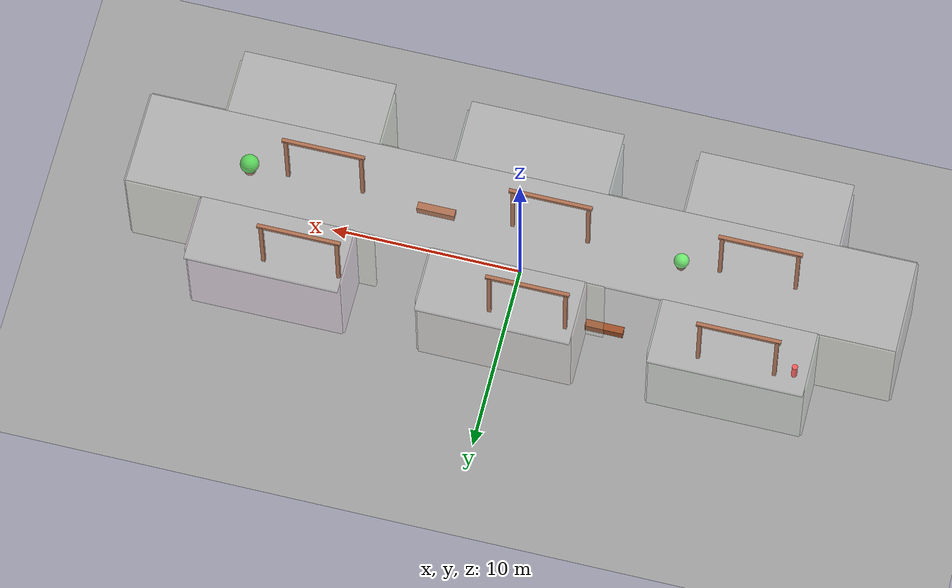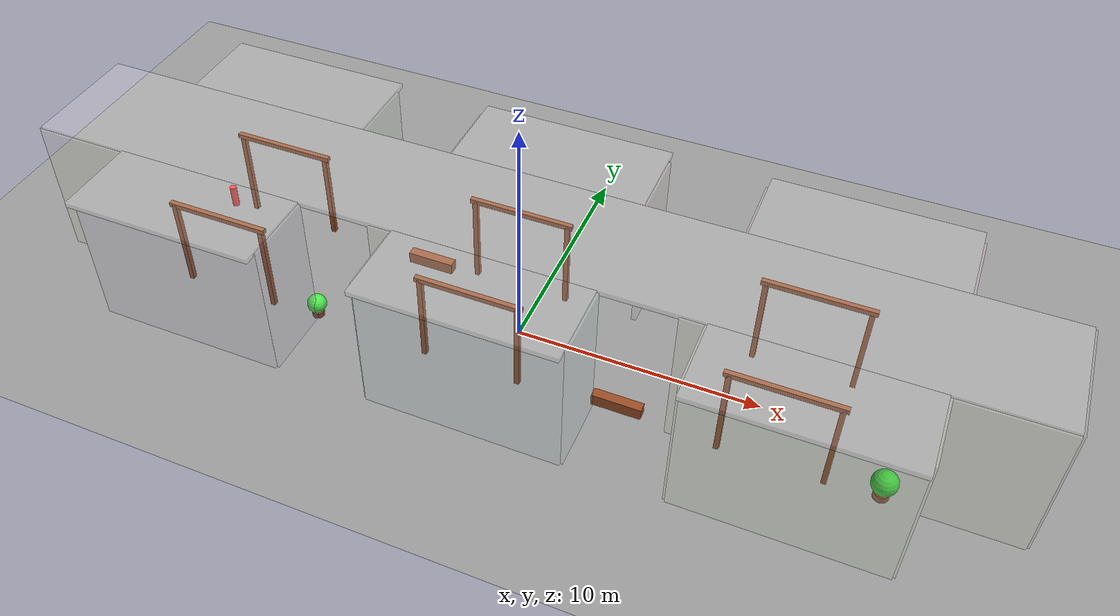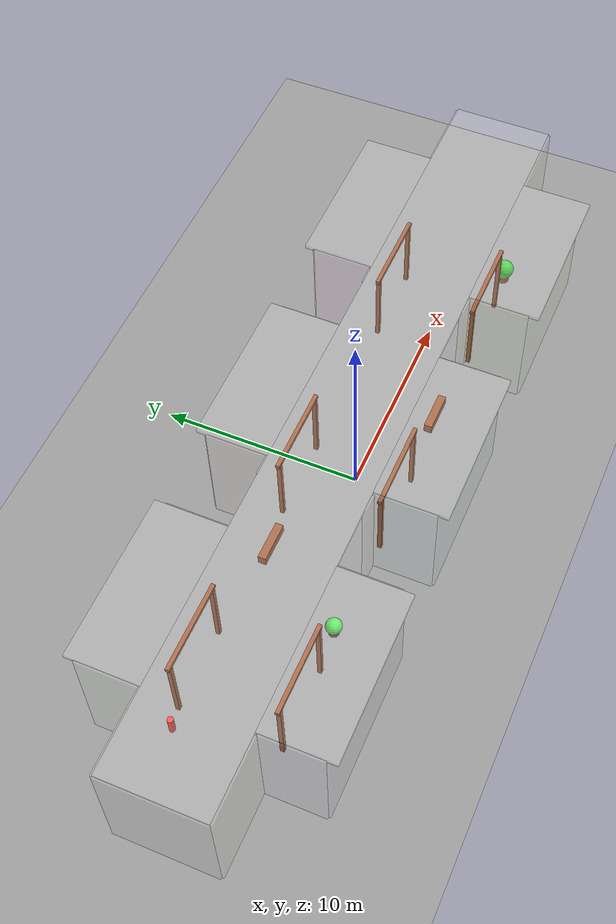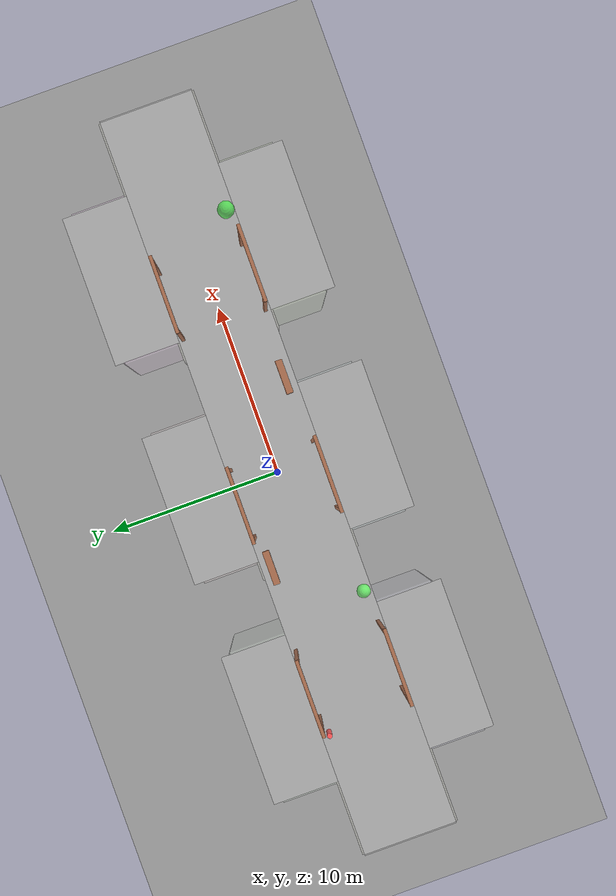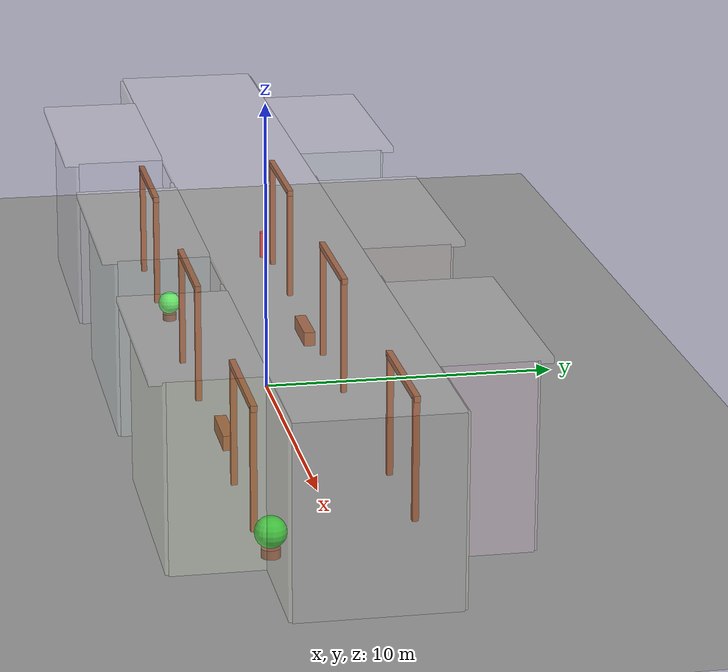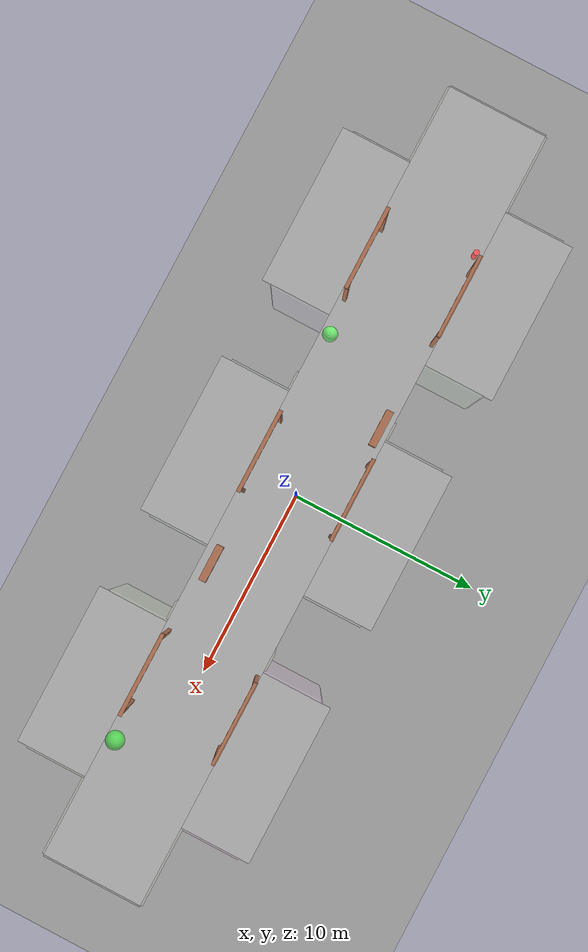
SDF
<?xml version="1.0" ?>
<sdf version="1.8">
  <world name="corridor_rooms">
    <physics name="1ms" type="ignored">
      <max_step_size>0.001</max_step_size>
      <real_time_factor>1.0</real_time_factor>
    </physics>

    <plugin
      filename="gz-sim-physics-system"
      name="gz::sim::systems::Physics">
    </plugin>
    <plugin
      filename="gz-sim-user-commands-system"
      name="gz::sim::systems::UserCommands">
    </plugin>
    <plugin
      filename="gz-sim-scene-broadcaster-system"
      name="gz::sim::systems::SceneBroadcaster">
    </plugin>

    <scene>
      <ambient>0.4 0.4 0.4</ambient>
      <background>0.7 0.7 0.7</background>
      <shadows>true</shadows>
    </scene>

    <!-- Lighting -->
    <light type="directional" name="sun">
      <cast_shadows>true</cast_shadows>
      <pose>0 0 10 0 0 0</pose>
      <diffuse>0.8 0.8 0.8 1</diffuse>
      <specular>0.2 0.2 0.2 1</specular>
      <attenuation>
        <range>1000</range>
        <constant>0.9</constant>
        <linear>0.01</linear>
        <quadratic>0.001</quadratic>
      </attenuation>
      <direction>-0.5 0.1 -0.9</direction>
    </light>

    <!-- Corridor ceiling lights -->
    <light type="point" name="corridor_light_1">
      <pose>-15 0 5.5 0 0 0</pose>
      <diffuse>1.0 1.0 0.9 1</diffuse>
      <specular>0.1 0.1 0.1 1</specular>
      <attenuation>
        <range>10</range>
        <constant>0.5</constant>
        <linear>0.01</linear>
        <quadratic>0.001</quadratic>
      </attenuation>
    </light>

    <light type="point" name="corridor_light_2">
      <pose>-7 0 5.5 0 0 0</pose>
      <diffuse>1.0 1.0 0.9 1</diffuse>
      <specular>0.1 0.1 0.1 1</specular>
      <attenuation>
        <range>10</range>
        <constant>0.5</constant>
        <linear>0.01</linear>
        <quadratic>0.001</quadratic>
      </attenuation>
    </light>

    <light type="point" name="corridor_light_3">
      <pose>0 0 5.5 0 0 0</pose>
      <diffuse>1.0 1.0 0.9 1</diffuse>
      <specular>0.1 0.1 0.1 1</specular>
      <attenuation>
        <range>10</range>
        <constant>0.5</constant>
        <linear>0.01</linear>
        <quadratic>0.001</quadratic>
      </attenuation>
    </light>

    <light type="point" name="corridor_light_4">
      <pose>7 0 5.5 0 0 0</pose>
      <diffuse>1.0 1.0 0.9 1</diffuse>
      <specular>0.1 0.1 0.1 1</specular>
      <attenuation>
        <range>10</range>
        <constant>0.5</constant>
        <linear>0.01</linear>
        <quadratic>0.001</quadratic>
      </attenuation>
    </light>

    <light type="point" name="corridor_light_5">
      <pose>15 0 5.5 0 0 0</pose>
      <diffuse>1.0 1.0 0.9 1</diffuse>
      <specular>0.1 0.1 0.1 1</specular>
      <attenuation>
        <range>10</range>
        <constant>0.5</constant>
        <linear>0.01</linear>
        <quadratic>0.001</quadratic>
      </attenuation>
    </light>

    <!-- Ground plane -->
    <model name="ground_plane">
      <static>true</static>
      <link name="link">
        <collision name="collision">
          <geometry>
            <plane>
              <normal>0 0 1</normal>
              <size>50 15</size>
            </plane>
          </geometry>
        </collision>
        <visual name="visual">
          <geometry>
            <plane>
              <normal>0 0 1</normal>
              <size>50 15</size>
            </plane>
          </geometry>
          <material>
            <ambient>0.5 0.5 0.5 1</ambient>
            <diffuse>0.6 0.6 0.6 1</diffuse>
            <specular>0.1 0.1 0.1 1</specular>
          </material>
        </visual>
      </link>
    </model>

    <!-- Corridor ceiling -->
    <model name="corridor_ceiling">
      <static>true</static>
      <pose>0 0 6 0 0 0</pose>
      <link name="link">
        <collision name="collision">
          <geometry>
            <box>
              <size>40 5 0.2</size>
            </box>
          </geometry>
        </collision>
        <visual name="visual">
          <geometry>
            <box>
              <size>40 5 0.2</size>
            </box>
          </geometry>
          <material>
            <ambient>0.9 0.9 0.9 0.2</ambient>
            <diffuse>0.95 0.95 0.95 0.2</diffuse>
            <specular>0.2 0.2 0.2 1</specular>
          </material>
        </visual>
      </link>
    </model>

    <!-- Main corridor walls with gaps for doors -->
    <!-- Left corridor wall - segment 1 -->
    <model name="corridor_wall_left_1">
      <static>true</static>
      <pose>-16 2.5 3 0 0 0</pose>
      <link name="link">
        <collision name="collision">
          <geometry>
            <box>
              <size>8 0.2 6</size>
            </box>
          </geometry>
        </collision>
        <visual name="visual">
          <geometry>
            <box>
              <size>8 0.2 6</size>
            </box>
          </geometry>
          <material>
            <ambient>0.8 0.8 0.7 0.2</ambient>
            <diffuse>0.9 0.9 0.8 0.2</diffuse>
            <specular>0.1 0.1 0.1 1</specular>
          </material>
        </visual>
      </link>
    </model>

    <!-- Left corridor wall - segment 2 (between doors) -->
    <model name="corridor_wall_left_2">
      <static>true</static>
      <pose>-3 2.5 3 0 0 0</pose>
      <link name="link">
        <collision name="collision">
          <geometry>
            <box>
              <size>4 0.2 6</size>
            </box>
          </geometry>
        </collision>
        <visual name="visual">
          <geometry>
            <box>
              <size>4 0.2 6</size>
            </box>
          </geometry>
          <material>
            <ambient>0.8 0.8 0.7 0.2</ambient>
            <diffuse>0.9 0.9 0.8 0.2</diffuse>
            <specular>0.1 0.1 0.1 1</specular>
          </material>
        </visual>
      </link>
    </model>

    <!-- Left corridor wall - segment 3 -->
    <model name="corridor_wall_left_3">
      <static>true</static>
      <pose>9 2.5 3 0 0 0</pose>
      <link name="link">
        <collision name="collision">
          <geometry>
            <box>
              <size>4 0.2 6</size>
            </box>
          </geometry>
        </collision>
        <visual name="visual">
          <geometry>
            <box>
              <size>4 0.2 6</size>
            </box>
          </geometry>
          <material>
            <ambient>0.8 0.8 0.7 0.2</ambient>
            <diffuse>0.9 0.9 0.8 0.2</diffuse>
            <specular>0.1 0.1 0.1 1</specular>
          </material>
        </visual>
      </link>
    </model>

    <!-- Left corridor wall - segment 4 -->
    <model name="corridor_wall_left_4">
      <static>true</static>
      <pose>16 2.5 3 0 0 0</pose>
      <link name="link">
        <collision name="collision">
          <geometry>
            <box>
              <size>8 0.2 6</size>
            </box>
          </geometry>
        </collision>
        <visual name="visual">
          <geometry>
            <box>
              <size>8 0.2 6</size>
            </box>
          </geometry>
          <material>
            <ambient>0.8 0.8 0.7 0.2</ambient>
            <diffuse>0.9 0.9 0.8 0.2</diffuse>
            <specular>0.1 0.1 0.1 1</specular>
          </material>
        </visual>
      </link>
    </model>

    <!-- Right corridor wall - segment 1 -->
    <model name="corridor_wall_right_1">
      <static>true</static>
      <pose>-16 -2.5 3 0 0 0</pose>
      <link name="link">
        <collision name="collision">
          <geometry>
            <box>
              <size>8 0.2 6</size>
            </box>
          </geometry>
        </collision>
        <visual name="visual">
          <geometry>
            <box>
              <size>8 0.2 6</size>
            </box>
          </geometry>
          <material>
            <ambient>0.8 0.8 0.7 0.2</ambient>
            <diffuse>0.9 0.9 0.8 0.2</diffuse>
            <specular>0.1 0.1 0.1 1</specular>
          </material>
        </visual>
      </link>
    </model>

    <!-- Right corridor wall - segment 2 (between doors) -->
    <model name="corridor_wall_right_2">
      <static>true</static>
      <pose>-3 -2.5 3 0 0 0</pose>
      <link name="link">
        <collision name="collision">
          <geometry>
            <box>
              <size>4 0.2 6</size>
            </box>
          </geometry>
        </collision>
        <visual name="visual">
          <geometry>
            <box>
              <size>4 0.2 6</size>
            </box>
          </geometry>
          <material>
            <ambient>0.8 0.8 0.7 0.2</ambient>
            <diffuse>0.9 0.9 0.8 0.2</diffuse>
            <specular>0.1 0.1 0.1 1</specular>
          </material>
        </visual>
      </link>
    </model>

    <!-- Right corridor wall - segment 3 -->
    <model name="corridor_wall_right_3">
      <static>true</static>
      <pose>9 -2.5 3 0 0 0</pose>
      <link name="link">
        <collision name="collision">
          <geometry>
            <box>
              <size>4 0.2 6</size>
            </box>
          </geometry>
        </collision>
        <visual name="visual">
          <geometry>
            <box>
              <size>4 0.2 6</size>
            </box>
          </geometry>
          <material>
            <ambient>0.8 0.8 0.7 0.2</ambient>
            <diffuse>0.9 0.9 0.8 0.2</diffuse>
            <specular>0.1 0.1 0.1 1</specular>
          </material>
        </visual>
      </link>
    </model>

    <!-- Right corridor wall - segment 4 -->
    <model name="corridor_wall_right_4">
      <static>true</static>
      <pose>16 -2.5 3 0 0 0</pose>
      <link name="link">
        <collision name="collision">
          <geometry>
            <box>
              <size>8 0.2 6</size>
            </box>
          </geometry>
        </collision>
        <visual name="visual">
          <geometry>
            <box>
              <size>8 0.2 6</size>
            </box>
          </geometry>
          <material>
            <ambient>0.8 0.8 0.7 0.2</ambient>
            <diffuse>0.9 0.9 0.8 0.2</diffuse>
            <specular>0.1 0.1 0.1 1</specular>
          </material>
        </visual>
      </link>
    </model>

    <!-- Room 1 (Left side, front) -->
    <model name="room1_back_wall">
      <static>true</static>
      <pose>-12 5.5 3 0 0 0</pose>
      <link name="link">
        <collision name="collision">
          <geometry>
            <box>
              <size>8 0.2 6</size>
            </box>
          </geometry>
        </collision>
        <visual name="visual">
          <geometry>
            <box>
              <size>8 0.2 6</size>
            </box>
          </geometry>
          <material>
            <ambient>0.7 0.8 0.7 0.2</ambient>
            <diffuse>0.8 0.9 0.8 0.2</diffuse>
            <specular>0.1 0.1 0.1 1</specular>
          </material>
        </visual>
      </link>
    </model>

    <model name="room1_left_wall">
      <static>true</static>
      <pose>-16 4 3 0 0 0</pose>
      <link name="link">
        <collision name="collision">
          <geometry>
            <box>
              <size>0.2 3 6</size>
            </box>
          </geometry>
        </collision>
        <visual name="visual">
          <geometry>
            <box>
              <size>0.2 3 6</size>
            </box>
          </geometry>
          <material>
            <ambient>0.7 0.8 0.7 0.2</ambient>
            <diffuse>0.8 0.9 0.8 0.2</diffuse>
            <specular>0.1 0.1 0.1 1</specular>
          </material>
        </visual>
      </link>
    </model>

    <model name="room1_right_wall">
      <static>true</static>
      <pose>-8 4 3 0 0 0</pose>
      <link name="link">
        <collision name="collision">
          <geometry>
            <box>
              <size>0.2 3 6</size>
            </box>
          </geometry>
        </collision>
        <visual name="visual">
          <geometry>
            <box>
              <size>0.2 3 6</size>
            </box>
          </geometry>
          <material>
            <ambient>0.7 0.8 0.7 0.2</ambient>
            <diffuse>0.8 0.9 0.8 0.2</diffuse>
            <specular>0.1 0.1 0.1 1</specular>
          </material>
        </visual>
      </link>
    </model>

    <!-- Room 1 ceiling -->
    <model name="room1_ceiling">
      <static>true</static>
      <pose>-12 4.25 6 0 0 0</pose>
      <link name="link">
        <collision name="collision">
          <geometry>
            <box>
              <size>8 3.5 0.2</size>
            </box>
          </geometry>
        </collision>
        <visual name="visual">
          <geometry>
            <box>
              <size>8 3.5 0.2</size>
            </box>
          </geometry>
          <material>
            <ambient>0.9 0.9 0.9 0.2</ambient>
            <diffuse>0.95 0.95 0.95 0.2</diffuse>
            <specular>0.2 0.2 0.2 1</specular>
          </material>
        </visual>
      </link>
    </model>

    <!-- Room 2 (Right side, front) -->
    <model name="room2_back_wall">
      <static>true</static>
      <pose>-12 -5.5 3 0 0 0</pose>
      <link name="link">
        <collision name="collision">
          <geometry>
            <box>
              <size>8 0.2 6</size>
            </box>
          </geometry>
        </collision>
        <visual name="visual">
          <geometry>
            <box>
              <size>8 0.2 6</size>
            </box>
          </geometry>
          <material>
            <ambient>0.7 0.7 0.8 0.2</ambient>
            <diffuse>0.8 0.8 0.9 0.2</diffuse>
            <specular>0.1 0.1 0.1 1</specular>
          </material>
        </visual>
      </link>
    </model>

    <model name="room2_left_wall">
      <static>true</static>
      <pose>-8 -4 3 0 0 0</pose>
      <link name="link">
        <collision name="collision">
          <geometry>
            <box>
              <size>0.2 3 6</size>
            </box>
          </geometry>
        </collision>
        <visual name="visual">
          <geometry>
            <box>
              <size>0.2 3 6</size>
            </box>
          </geometry>
          <material>
            <ambient>0.7 0.7 0.8 0.2</ambient>
            <diffuse>0.8 0.8 0.9 0.2</diffuse>
            <specular>0.1 0.1 0.1 1</specular>
          </material>
        </visual>
      </link>
    </model>

    <model name="room2_right_wall">
      <static>true</static>
      <pose>-16 -4 3 0 0 0</pose>
      <link name="link">
        <collision name="collision">
          <geometry>
            <box>
              <size>0.2 3 6</size>
            </box>
          </geometry>
        </collision>
        <visual name="visual">
          <geometry>
            <box>
              <size>0.2 3 6</size>
            </box>
          </geometry>
          <material>
            <ambient>0.7 0.7 0.8 0.2</ambient>
            <diffuse>0.8 0.8 0.9 0.2</diffuse>
            <specular>0.1 0.1 0.1 1</specular>
          </material>
        </visual>
      </link>
    </model>

    <!-- Room 2 ceiling -->
    <model name="room2_ceiling">
      <static>true</static>
      <pose>-12 -4.25 6 0 0 0</pose>
      <link name="link">
        <collision name="collision">
          <geometry>
            <box>
              <size>8 3.5 0.2</size>
            </box>
          </geometry>
        </collision>
        <visual name="visual">
          <geometry>
            <box>
              <size>8 3.5 0.2</size>
            </box>
          </geometry>
          <material>
            <ambient>0.9 0.9 0.9 0.2</ambient>
            <diffuse>0.95 0.95 0.95 0.2</diffuse>
            <specular>0.2 0.2 0.2 1</specular>
          </material>
        </visual>
      </link>
    </model>

    <!-- Room 3 (Left side, middle) -->
    <model name="room3_back_wall">
      <static>true</static>
      <pose>0 5.5 3 0 0 0</pose>
      <link name="link">
        <collision name="collision">
          <geometry>
            <box>
              <size>8 0.2 6</size>
            </box>
          </geometry>
        </collision>
        <visual name="visual">
          <geometry>
            <box>
              <size>8 0.2 6</size>
            </box>
          </geometry>
          <material>
            <ambient>0.8 0.7 0.7 0.2</ambient>
            <diffuse>0.9 0.8 0.8 0.2</diffuse>
            <specular>0.1 0.1 0.1 1</specular>
          </material>
        </visual>
      </link>
    </model>

    <model name="room3_left_wall">
      <static>true</static>
      <pose>-4 4 3 0 0 0</pose>
      <link name="link">
        <collision name="collision">
          <geometry>
            <box>
              <size>0.2 3 6</size>
            </box>
          </geometry>
        </collision>
        <visual name="visual">
          <geometry>
            <box>
              <size>0.2 3 6</size>
            </box>
          </geometry>
          <material>
            <ambient>0.8 0.7 0.7 0.2</ambient>
            <diffuse>0.9 0.8 0.8 0.2</diffuse>
            <specular>0.1 0.1 0.1 1</specular>
          </material>
        </visual>
      </link>
    </model>

    <model name="room3_right_wall">
      <static>true</static>
      <pose>4 4 3 0 0 0</pose>
      <link name="link">
        <collision name="collision">
          <geometry>
            <box>
              <size>0.2 3 6</size>
            </box>
          </geometry>
        </collision>
        <visual name="visual">
          <geometry>
            <box>
              <size>0.2 3 6</size>
            </box>
          </geometry>
          <material>
            <ambient>0.8 0.7 0.7 0.2</ambient>
            <diffuse>0.9 0.8 0.8 0.2</diffuse>
            <specular>0.1 0.1 0.1 1</specular>
          </material>
        </visual>
      </link>
    </model>

    <!-- Room 3 ceiling -->
    <model name="room3_ceiling">
      <static>true</static>
      <pose>0 4.25 6 0 0 0</pose>
      <link name="link">
        <collision name="collision">
          <geometry>
            <box>
              <size>8 3.5 0.2</size>
            </box>
          </geometry>
        </collision>
        <visual name="visual">
          <geometry>
            <box>
              <size>8 3.5 0.2</size>
            </box>
          </geometry>
          <material>
            <ambient>0.9 0.9 0.9 0.2</ambient>
            <diffuse>0.95 0.95 0.95 0.2</diffuse>
            <specular>0.2 0.2 0.2 1</specular>
          </material>
        </visual>
      </link>
    </model>

    <!-- Room 4 (Right side, middle) -->
    <model name="room4_back_wall">
      <static>true</static>
      <pose>0 -5.5 3 0 0 0</pose>
      <link name="link">
        <collision name="collision">
          <geometry>
            <box>
              <size>8 0.2 6</size>
            </box>
          </geometry>
        </collision>
        <visual name="visual">
          <geometry>
            <box>
              <size>8 0.2 6</size>
            </box>
          </geometry>
          <material>
            <ambient>0.7 0.8 0.8 0.2</ambient>
            <diffuse>0.8 0.9 0.9 0.2</diffuse>
            <specular>0.1 0.1 0.1 1</specular>
          </material>
        </visual>
      </link>
    </model>

    <model name="room4_left_wall">
      <static>true</static>
      <pose>4 -4 3 0 0 0</pose>
      <link name="link">
        <collision name="collision">
          <geometry>
            <box>
              <size>0.2 3 6</size>
            </box>
          </geometry>
        </collision>
        <visual name="visual">
          <geometry>
            <box>
              <size>0.2 3 6</size>
            </box>
          </geometry>
          <material>
            <ambient>0.7 0.8 0.8 0.2</ambient>
            <diffuse>0.8 0.9 0.9 0.2</diffuse>
            <specular>0.1 0.1 0.1 1</specular>
          </material>
        </visual>
      </link>
    </model>

    <model name="room4_right_wall">
      <static>true</static>
      <pose>-4 -4 3 0 0 0</pose>
      <link name="link">
        <collision name="collision">
          <geometry>
            <box>
              <size>0.2 3 6</size>
            </box>
          </geometry>
        </collision>
        <visual name="visual">
          <geometry>
            <box>
              <size>0.2 3 6</size>
            </box>
          </geometry>
          <material>
            <ambient>0.7 0.8 0.8 0.2</ambient>
            <diffuse>0.8 0.9 0.9 0.2</diffuse>
            <specular>0.1 0.1 0.1 1</specular>
          </material>
        </visual>
      </link>
    </model>

    <!-- Room 4 ceiling -->
    <model name="room4_ceiling">
      <static>true</static>
      <pose>0 -4.25 6 0 0 0</pose>
      <link name="link">
        <collision name="collision">
          <geometry>
            <box>
              <size>8 3.5 0.2</size>
            </box>
          </geometry>
        </collision>
        <visual name="visual">
          <geometry>
            <box>
              <size>8 3.5 0.2</size>
            </box>
          </geometry>
          <material>
            <ambient>0.9 0.9 0.9 0.2</ambient>
            <diffuse>0.95 0.95 0.95 0.2</diffuse>
            <specular>0.2 0.2 0.2 1</specular>
          </material>
        </visual>
      </link>
    </model>

    <!-- Room 5 (Left side, back) -->
    <model name="room5_back_wall">
      <static>true</static>
      <pose>12 5.5 3 0 0 0</pose>
      <link name="link">
        <collision name="collision">
          <geometry>
            <box>
              <size>8 0.2 6</size>
            </box>
          </geometry>
        </collision>
        <visual name="visual">
          <geometry>
            <box>
              <size>8 0.2 6</size>
            </box>
          </geometry>
          <material>
            <ambient>0.9 0.7 0.9 0.2</ambient>
            <diffuse>1.0 0.8 1.0 0.2</diffuse>
            <specular>0.1 0.1 0.1 1</specular>
          </material>
        </visual>
      </link>
    </model>

    <model name="room5_left_wall">
      <static>true</static>
      <pose>8 4 3 0 0 0</pose>
      <link name="link">
        <collision name="collision">
          <geometry>
            <box>
              <size>0.2 3 6</size>
            </box>
          </geometry>
        </collision>
        <visual name="visual">
          <geometry>
            <box>
              <size>0.2 3 6</size>
            </box>
          </geometry>
          <material>
            <ambient>0.9 0.7 0.9 0.2</ambient>
            <diffuse>1.0 0.8 1.0 0.2</diffuse>
            <specular>0.1 0.1 0.1 1</specular>
          </material>
        </visual>
      </link>
    </model>

    <model name="room5_right_wall">
      <static>true</static>
      <pose>16 4 3 0 0 0</pose>
      <link name="link">
        <collision name="collision">
          <geometry>
            <box>
              <size>0.2 3 6</size>
            </box>
          </geometry>
        </collision>
        <visual name="visual">
          <geometry>
            <box>
              <size>0.2 3 6</size>
            </box>
          </geometry>
          <material>
            <ambient>0.9 0.7 0.9 0.2</ambient>
            <diffuse>1.0 0.8 1.0 0.2</diffuse>
            <specular>0.1 0.1 0.1 1</specular>
          </material>
        </visual>
      </link>
    </model>

    <!-- Room 5 ceiling -->
    <model name="room5_ceiling">
      <static>true</static>
      <pose>12 4.25 6 0 0 0</pose>
      <link name="link">
        <collision name="collision">
          <geometry>
            <box>
              <size>8 3.5 0.2</size>
            </box>
          </geometry>
        </collision>
        <visual name="visual">
          <geometry>
            <box>
              <size>8 3.5 0.2</size>
            </box>
          </geometry>
          <material>
            <ambient>0.9 0.9 0.9 0.2</ambient>
            <diffuse>0.95 0.95 0.95 0.2</diffuse>
            <specular>0.2 0.2 0.2 1</specular>
          </material>
        </visual>
      </link>
    </model>

    <!-- Room 6 (Right side, back) -->
    <model name="room6_back_wall">
      <static>true</static>
      <pose>12 -5.5 3 0 0 0</pose>
      <link name="link">
        <collision name="collision">
          <geometry>
            <box>
              <size>8 0.2 6</size>
            </box>
          </geometry>
        </collision>
        <visual name="visual">
          <geometry>
            <box>
              <size>8 0.2 6</size>
            </box>
          </geometry>
          <material>
            <ambient>0.8 0.9 0.7 0.2</ambient>
            <diffuse>0.9 1.0 0.8 0.2</diffuse>
            <specular>0.1 0.1 0.1 1</specular>
          </material>
        </visual>
      </link>
    </model>

    <model name="room6_left_wall">
      <static>true</static>
      <pose>16 -4 3 0 0 0</pose>
      <link name="link">
        <collision name="collision">
          <geometry>
            <box>
              <size>0.2 3 6</size>
            </box>
          </geometry>
        </collision>
        <visual name="visual">
          <geometry>
            <box>
              <size>0.2 3 6</size>
            </box>
          </geometry>
          <material>
            <ambient>0.8 0.9 0.7 0.2</ambient>
            <diffuse>0.9 1.0 0.8 0.2</diffuse>
            <specular>0.1 0.1 0.1 1</specular>
          </material>
        </visual>
      </link>
    </model>

    <model name="room6_right_wall">
      <static>true</static>
      <pose>8 -4 3 0 0 0</pose>
      <link name="link">
        <collision name="collision">
          <geometry>
            <box>
              <size>0.2 3 6</size>
            </box>
          </geometry>
        </collision>
        <visual name="visual">
          <geometry>
            <box>
              <size>0.2 3 6</size>
            </box>
          </geometry>
          <material>
            <ambient>0.8 0.9 0.7 0.2</ambient>
            <diffuse>0.9 1.0 0.8 0.2</diffuse>
            <specular>0.1 0.1 0.1 1</specular>
          </material>
        </visual>
      </link>
    </model>

    <!-- Room 6 ceiling -->
    <model name="room6_ceiling">
      <static>true</static>
      <pose>12 -4.25 6 0 0 0</pose>
      <link name="link">
        <collision name="collision">
          <geometry>
            <box>
              <size>8 3.5 0.2</size>
            </box>
          </geometry>
        </collision>
        <visual name="visual">
          <geometry>
            <box>
              <size>8 3.5 0.2</size>
            </box>
          </geometry>
          <material>
            <ambient>0.9 0.9 0.9 0.2</ambient>
            <diffuse>0.95 0.95 0.95 0.2</diffuse>
            <specular>0.2 0.2 0.2 1</specular>
          </material>
        </visual>
      </link>
    </model>

    <!-- Door openings (no collision, just visual frames for navigation) -->
    <!-- Door 1 (to Room 1) - opening at x=-12 -->
    <model name="door1_frame">
      <pose>-12 2.5 2 0 0 0</pose>
      <static>true</static>
      <link name="frame_link">
        <visual name="left_post">
          <pose>-2 0 0 0 0 0</pose>
          <geometry>
            <box>
              <size>0.2 0.2 4</size>
            </box>
          </geometry>
          <material>
            <ambient>0.4 0.2 0.1 1</ambient>
            <diffuse>0.6 0.3 0.15 1</diffuse>
            <specular>0.1 0.1 0.1 1</specular>
          </material>
        </visual>
        <visual name="right_post">
          <pose>2 0 0 0 0 0</pose>
          <geometry>
            <box>
              <size>0.2 0.2 4</size>
            </box>
          </geometry>
          <material>
            <ambient>0.4 0.2 0.1 1</ambient>
            <diffuse>0.6 0.3 0.15 1</diffuse>
            <specular>0.1 0.1 0.1 1</specular>
          </material>
        </visual>
        <visual name="top_post">
          <pose>0 0 2 0 0 0</pose>
          <geometry>
            <box>
              <size>4.4 0.2 0.2</size>
            </box>
          </geometry>
          <material>
            <ambient>0.4 0.2 0.1 1</ambient>
            <diffuse>0.6 0.3 0.15 1</diffuse>
            <specular>0.1 0.1 0.1 1</specular>
          </material>
        </visual>
      </link>
    </model>

    <!-- Door 2 (to Room 2) - opening at x=-12 -->
    <model name="door2_frame">
      <pose>-12 -2.5 2 0 0 0</pose>
      <static>true</static>
      <link name="frame_link">
        <visual name="left_post">
          <pose>-2 0 0 0 0 0</pose>
          <geometry>
            <box>
              <size>0.2 0.2 4</size>
            </box>
          </geometry>
          <material>
            <ambient>0.4 0.2 0.1 1</ambient>
            <diffuse>0.6 0.3 0.15 1</diffuse>
            <specular>0.1 0.1 0.1 1</specular>
          </material>
        </visual>
        <visual name="right_post">
          <pose>2 0 0 0 0 0</pose>
          <geometry>
            <box>
              <size>0.2 0.2 4</size>
            </box>
          </geometry>
          <material>
            <ambient>0.4 0.2 0.1 1</ambient>
            <diffuse>0.6 0.3 0.15 1</diffuse>
            <specular>0.1 0.1 0.1 1</specular>
          </material>
        </visual>
        <visual name="top_post">
          <pose>0 0 2 0 0 0</pose>
          <geometry>
            <box>
              <size>4.4 0.2 0.2</size>
            </box>
          </geometry>
          <material>
            <ambient>0.4 0.2 0.1 1</ambient>
            <diffuse>0.6 0.3 0.15 1</diffuse>
            <specular>0.1 0.1 0.1 1</specular>
          </material>
        </visual>
      </link>
    </model>

    <!-- Door 3 (to Room 3) - opening at x=-1 -->
    <model name="door3_frame">
      <pose>-1 2.5 2 0 0 0</pose>
      <static>true</static>
      <link name="frame_link">
        <visual name="left_post">
          <pose>-2 0 0 0 0 0</pose>
          <geometry>
            <box>
              <size>0.2 0.2 4</size>
            </box>
          </geometry>
          <material>
            <ambient>0.4 0.2 0.1 1</ambient>
            <diffuse>0.6 0.3 0.15 1</diffuse>
            <specular>0.1 0.1 0.1 1</specular>
          </material>
        </visual>
        <visual name="right_post">
          <pose>2 0 0 0 0 0</pose>
          <geometry>
            <box>
              <size>0.2 0.2 4</size>
            </box>
          </geometry>
          <material>
            <ambient>0.4 0.2 0.1 1</ambient>
            <diffuse>0.6 0.3 0.15 1</diffuse>
            <specular>0.1 0.1 0.1 1</specular>
          </material>
        </visual>
        <visual name="top_post">
          <pose>0 0 2 0 0 0</pose>
          <geometry>
            <box>
              <size>4.4 0.2 0.2</size>
            </box>
          </geometry>
          <material>
            <ambient>0.4 0.2 0.1 1</ambient>
            <diffuse>0.6 0.3 0.15 1</diffuse>
            <specular>0.1 0.1 0.1 1</specular>
          </material>
        </visual>
      </link>
    </model>

    <!-- Door 4 (to Room 4) - opening at x=-1 -->
    <model name="door4_frame">
      <pose>-1 -2.5 2 0 0 0</pose>
      <static>true</static>
      <link name="frame_link">
        <visual name="left_post">
          <pose>-2 0 0 0 0 0</pose>
          <geometry>
            <box>
              <size>0.2 0.2 4</size>
            </box>
          </geometry>
          <material>
            <ambient>0.4 0.2 0.1 1</ambient>
            <diffuse>0.6 0.3 0.15 1</diffuse>
            <specular>0.1 0.1 0.1 1</specular>
          </material>
        </visual>
        <visual name="right_post">
          <pose>2 0 0 0 0 0</pose>
          <geometry>
            <box>
              <size>0.2 0.2 4</size>
            </box>
          </geometry>
          <material>
            <ambient>0.4 0.2 0.1 1</ambient>
            <diffuse>0.6 0.3 0.15 1</diffuse>
            <specular>0.1 0.1 0.1 1</specular>
          </material>
        </visual>
        <visual name="top_post">
          <pose>0 0 2 0 0 0</pose>
          <geometry>
            <box>
              <size>4.4 0.2 0.2</size>
            </box>
          </geometry>
          <material>
            <ambient>0.4 0.2 0.1 1</ambient>
            <diffuse>0.6 0.3 0.15 1</diffuse>
            <specular>0.1 0.1 0.1 1</specular>
          </material>
        </visual>
      </link>
    </model>

    <!-- Door 5 (to Room 5) - opening at x=11 -->
    <model name="door5_frame">
      <pose>11 2.5 2 0 0 0</pose>
      <static>true</static>
      <link name="frame_link">
        <visual name="left_post">
          <pose>-2 0 0 0 0 0</pose>
          <geometry>
            <box>
              <size>0.2 0.2 4</size>
            </box>
          </geometry>
          <material>
            <ambient>0.4 0.2 0.1 1</ambient>
            <diffuse>0.6 0.3 0.15 1</diffuse>
            <specular>0.1 0.1 0.1 1</specular>
          </material>
        </visual>
        <visual name="right_post">
          <pose>2 0 0 0 0 0</pose>
          <geometry>
            <box>
              <size>0.2 0.2 4</size>
            </box>
          </geometry>
          <material>
            <ambient>0.4 0.2 0.1 1</ambient>
            <diffuse>0.6 0.3 0.15 1</diffuse>
            <specular>0.1 0.1 0.1 1</specular>
          </material>
        </visual>
        <visual name="top_post">
          <pose>0 0 2 0 0 0</pose>
          <geometry>
            <box>
              <size>4.4 0.2 0.2</size>
            </box>
          </geometry>
          <material>
            <ambient>0.4 0.2 0.1 1</ambient>
            <diffuse>0.6 0.3 0.15 1</diffuse>
            <specular>0.1 0.1 0.1 1</specular>
          </material>
        </visual>
      </link>
    </model>

    <!-- Door 6 (to Room 6) - opening at x=11 -->
    <model name="door6_frame">
      <pose>11 -2.5 2 0 0 0</pose>
      <static>true</static>
      <link name="frame_link">
        <visual name="left_post">
          <pose>-2 0 0 0 0 0</pose>
          <geometry>
            <box>
              <size>0.2 0.2 4</size>
            </box>
          </geometry>
          <material>
            <ambient>0.4 0.2 0.1 1</ambient>
            <diffuse>0.6 0.3 0.15 1</diffuse>
            <specular>0.1 0.1 0.1 1</specular>
          </material>
        </visual>
        <visual name="right_post">
          <pose>2 0 0 0 0 0</pose>
          <geometry>
            <box>
              <size>0.2 0.2 4</size>
            </box>
          </geometry>
          <material>
            <ambient>0.4 0.2 0.1 1</ambient>
            <diffuse>0.6 0.3 0.15 1</diffuse>
            <specular>0.1 0.1 0.1 1</specular>
          </material>
        </visual>
        <visual name="top_post">
          <pose>0 0 2 0 0 0</pose>
          <geometry>
            <box>
              <size>4.4 0.2 0.2</size>
            </box>
          </geometry>
          <material>
            <ambient>0.4 0.2 0.1 1</ambient>
            <diffuse>0.6 0.3 0.15 1</diffuse>
            <specular>0.1 0.1 0.1 1</specular>
          </material>
        </visual>
      </link>
    </model>

    <!-- End walls -->
    <!-- Front end wall -->
    <model name="front_end_wall">
      <static>true</static>
      <pose>-20 0 3 0 0 0</pose>
      <link name="link">
        <collision name="collision">
          <geometry>
            <box>
              <size>0.2 5 6</size>
            </box>
          </geometry>
        </collision>
        <visual name="visual">
          <geometry>
            <box>
              <size>0.2 5 6</size>
            </box>
          </geometry>
          <material>
            <ambient>0.6 0.6 0.6 0.2</ambient>
            <diffuse>0.7 0.7 0.7 0.2</diffuse>
            <specular>0.1 0.1 0.1 1</specular>
          </material>
        </visual>
      </link>
    </model>

    <!-- Back end wall -->
    <model name="back_end_wall">
      <static>true</static>
      <pose>20 0 3 0 0 0</pose>
      <link name="link">
        <collision name="collision">
          <geometry>
            <box>
              <size>0.2 5 6</size>
            </box>
          </geometry>
        </collision>
        <visual name="visual">
          <geometry>
            <box>
              <size>0.2 5 6</size>
            </box>
          </geometry>
          <material>
            <ambient>0.6 0.6 0.6 0.2</ambient>
            <diffuse>0.7 0.7 0.7 0.2</diffuse>
            <specular>0.1 0.1 0.1 1</specular>
          </material>
        </visual>
      </link>
    </model>

    <!-- Add some decorative elements -->
    <!-- Fire extinguisher -->
    <model name="fire_extinguisher">
      <pose>-15 2.3 0.5 0 0 0</pose>
      <static>true</static>
      <link name="link">
        <collision name="collision">
          <geometry>
            <cylinder>
              <radius>0.15</radius>
              <length>1</length>
            </cylinder>
          </geometry>
        </collision>
        <visual name="visual">
          <geometry>
            <cylinder>
              <radius>0.15</radius>
              <length>1</length>
            </cylinder>
          </geometry>
          <material>
            <ambient>0.8 0.1 0.1 1</ambient>
            <diffuse>1.0 0.2 0.2 1</diffuse>
            <specular>0.3 0.3 0.3 1</specular>
          </material>
        </visual>
      </link>
    </model>

    <!-- Bench 1 -->
    <model name="bench1">
      <pose>-5 2.2 0.25 0 0 0</pose>
      <static>true</static>
      <link name="link">
        <collision name="collision">
          <geometry>
            <box>
              <size>2 0.4 0.5</size>
            </box>
          </geometry>
        </collision>
        <visual name="visual">
          <geometry>
            <box>
              <size>2 0.4 0.5</size>
            </box>
          </geometry>
          <material>
            <ambient>0.4 0.2 0.1 1</ambient>
            <diffuse>0.6 0.3 0.15 1</diffuse>
            <specular>0.1 0.1 0.1 1</specular>
          </material>
        </visual>
      </link>
    </model>

    <!-- Bench 2 -->
    <model name="bench2">
      <pose>5 -2.2 0.25 0 0 0</pose>
      <static>true</static>
      <link name="link">
        <collision name="collision">
          <geometry>
            <box>
              <size>2 0.4 0.5</size>
            </box>
          </geometry>
        </collision>
        <visual name="visual">
          <geometry>
            <box>
              <size>2 0.4 0.5</size>
            </box>
          </geometry>
          <material>
            <ambient>0.4 0.2 0.1 1</ambient>
            <diffuse>0.6 0.3 0.15 1</diffuse>
            <specular>0.1 0.1 0.1 1</specular>
          </material>
        </visual>
      </link>
    </model>

    <!-- Plant 1 -->
    <model name="plant1">
      <pose>15 -2.3 0 0 0 0</pose>
      <static>true</static>
      <link name="pot">
        <collision name="pot_collision">
          <geometry>
            <cylinder>
              <radius>0.3</radius>
              <length>0.5</length>
            </cylinder>
          </geometry>
        </collision>
        <visual name="pot_visual">
          <geometry>
            <cylinder>
              <radius>0.3</radius>
              <length>0.5</length>
            </cylinder>
          </geometry>
          <material>
            <ambient>0.4 0.25 0.15 1</ambient>
            <diffuse>0.6 0.35 0.25 1</diffuse>
            <specular>0.1 0.1 0.1 1</specular>
          </material>
        </visual>
      </link>
      <link name="plant_body">
        <pose>0 0 0.75 0 0 0</pose>
        <collision name="plant_collision">
          <geometry>
            <sphere>
              <radius>0.5</radius>
            </sphere>
          </geometry>
        </collision>
        <visual name="plant_visual">
          <geometry>
            <sphere>
              <radius>0.5</radius>
            </sphere>
          </geometry>
          <material>
            <ambient>0.1 0.6 0.1 1</ambient>
            <diffuse>0.2 0.8 0.2 1</diffuse>
            <specular>0.1 0.1 0.1 1</specular>
          </material>
        </visual>
      </link>
      <joint name="pot_to_plant1" type="fixed">
        <parent>pot</parent>
        <child>plant_body</child>
      </joint>
    </model>

    <!-- Plant 2 -->
    <model name="plant2">
      <pose>-8 -2.3 0 0 0 0</pose>
      <static>true</static>
      <link name="pot">
        <collision name="pot_collision">
          <geometry>
            <cylinder>
              <radius>0.25</radius>
              <length>0.4</length>
            </cylinder>
          </geometry>
        </collision>
        <visual name="pot_visual">
          <geometry>
            <cylinder>
              <radius>0.25</radius>
              <length>0.4</length>
            </cylinder>
          </geometry>
          <material>
            <ambient>0.3 0.2 0.1 1</ambient>
            <diffuse>0.5 0.3 0.2 1</diffuse>
            <specular>0.1 0.1 0.1 1</specular>
          </material>
        </visual>
      </link>
      <link name="plant_body">
        <pose>0 0 0.6 0 0 0</pose>
        <collision name="plant_collision">
          <geometry>
            <sphere>
              <radius>0.4</radius>
            </sphere>
          </geometry>
        </collision>
        <visual name="plant_visual">
          <geometry>
            <sphere>
              <radius>0.4</radius>
            </sphere>
          </geometry>
          <material>
            <ambient>0.2 0.7 0.2 1</ambient>
            <diffuse>0.3 0.9 0.3 1</diffuse>
            <specular>0.1 0.1 0.1 1</specular>
          </material>
        </visual>
      </link>
      <joint name="pot_to_plant2" type="fixed">
        <parent>pot</parent>
        <child>plant_body</child>
      </joint>
    </model>

  </world>
</sdf>
